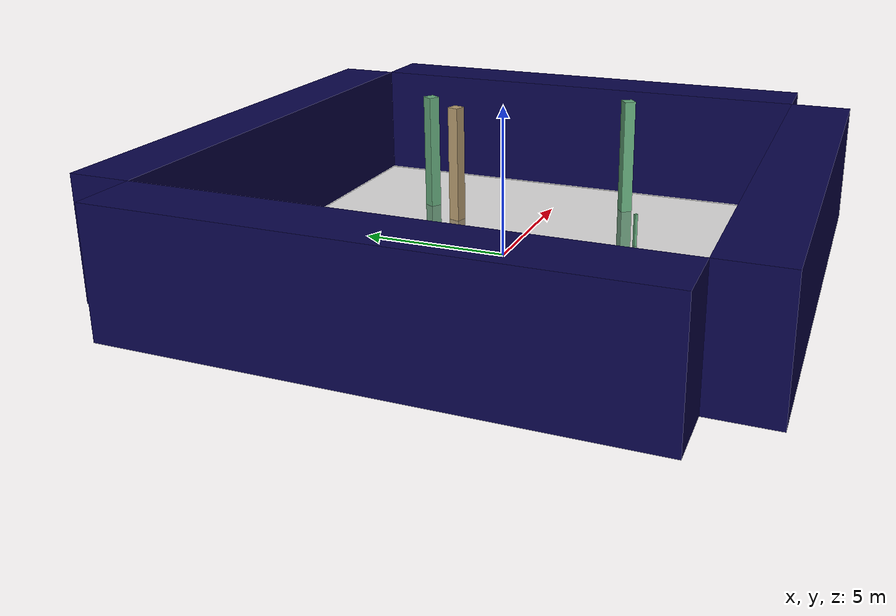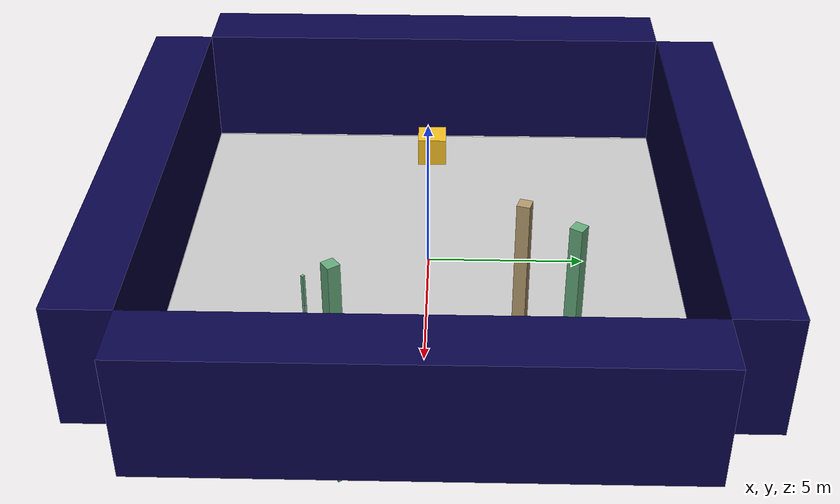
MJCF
<mujoco model="unnamed_model">
  <default>
    <default class="/" />
    <default class="border/" />
    <default class="border_1/" />
    <default class="border_2/" />
    <default class="border_3/" />
    <default class="light/" />
    <default class="agent/" />
    <default class="stone0/" />
    <default class="stone1/" />
    <default class="apple/" />
    <default class="apple_1/" />
  </default>
  <worldbody>
    <body name="border/">
      <body name="border/border" pos="0 9 2">
        <geom name="border/border_geom" class="border/" type="box" size="8.0 1.0 2.0" rgba="0.035 0.016 0.29 1.0" />
      </body>
    </body>
    <body name="border_1/">
      <body name="border_1/border" pos="0 -9 2">
        <geom name="border_1/border_geom" class="border_1/" type="box" size="8.0 1.0 2.0" rgba="0.035 0.016 0.29 1.0" />
      </body>
    </body>
    <body name="border_2/">
      <body name="border_2/border" pos="9 0 2">
        <geom name="border_2/border_geom" class="border_2/" type="box" size="1.0 8.0 2.0" rgba="0.035 0.016 0.29 1.0" />
      </body>
    </body>
    <body name="border_3/">
      <body name="border_3/border" pos="-9 0 2">
        <geom name="border_3/border_geom" class="border_3/" type="box" size="1.0 8.0 2.0" rgba="0.035 0.016 0.29 1.0" />
      </body>
    </body>
    <body name="light/">
      <body name="light/light" pos="0 0 15">
        <geom name="light/light_geom" class="light/" size="0.5" rgba="1.0 1.0 1.0 0.0" />
        <light name="light//unnamed_light_0" class="light/" />
      </body>
    </body>
    <body euler="0 0 270.76020591314187" name="agent/" pos="-6.4000000000000004 0 0.5">
      <joint name="agent/boxagent_freeJoint/" class="/" type="free" />
      <body name="agent/agent" pos="0 0 0" euler="0 0 0">
        <geom name="agent/boxagent_geom" class="agent/" type="box" size="0.5 0.5 0.5" rgba="0.949 0.7451 0.1333 1.0" euler="0 0 0" />
        <camera name="agent/boxagent_camera" class="agent/" fovy="90" pos="0 0 0.25" euler="-90 180 0" />
      </body>
    </body>
    <body name="stone0/">
      <body name="stone0/stone0" pos="2.468 -3.7910000000000004 0.10000000000000001" euler="0 0 -133.82480342000133">
        <geom name="stone0/stone_geom" class="stone0/" type="box" size="0.05 0.05 1.0" rgba="0.396078431372549 0.6705882352941176 0.48627450980392156 1.0" />
      </body>
    </body>
    <body name="stone1/">
      <body name="stone1/stone1" pos="5.9514499999999995 -2.5228000000000002 0.10000000000000001" euler="0 0 125.10596586426942">
        <geom name="stone1/stone_geom" class="stone1/" type="box" size="0.2 0.2 4.0" rgba="0.396078431372549 0.6705882352941176 0.48627450980392156 1.0" />
      </body>
    </body>
    <body name="apple/">
      <body name="apple/apple" pos="4.0359499999999997 4.3671000000000006 0.10000000000000001" euler="0 0 -32.083031753623487">
        <geom name="apple/apple_geom" class="apple/" type="box" size="0.2 0.2 4.0" rgba="0.396078431372549 0.6705882352941176 0.48627450980392156 1.0" />
      </body>
    </body>
    <body name="apple_1/">
      <body name="apple_1/apple" pos="2.8586499999999999 2.8784999999999989 0.10000000000000001" euler="0 0 -16.214235516171669">
        <geom name="apple_1/apple_geom" class="apple_1/" type="box" size="0.2 0.2 4.0" rgba="0.6980392156862745 0.6 0.43137254901960786 1.0" />
      </body>
    </body>
    <geom name="base_plane" class="/" type="plane" size="8 8 0.10000000000000001" />
  </worldbody>
</mujoco>
